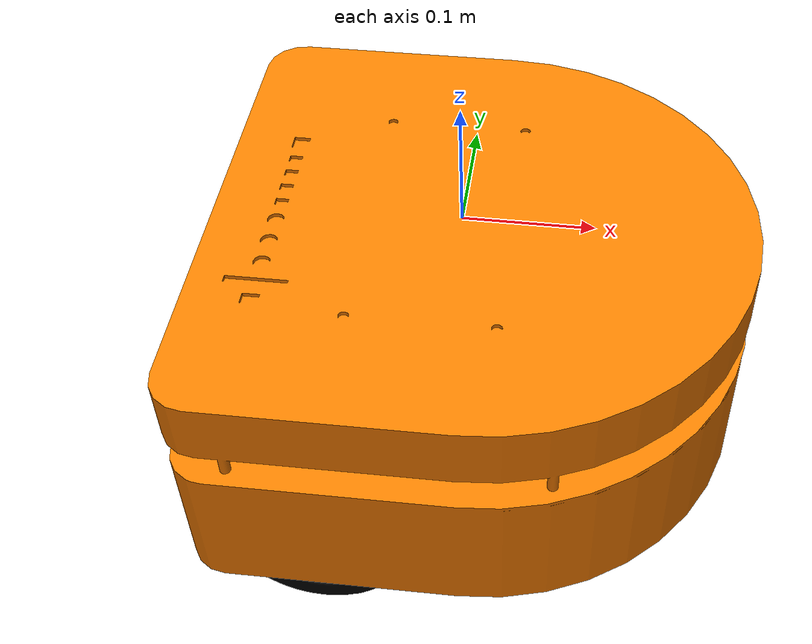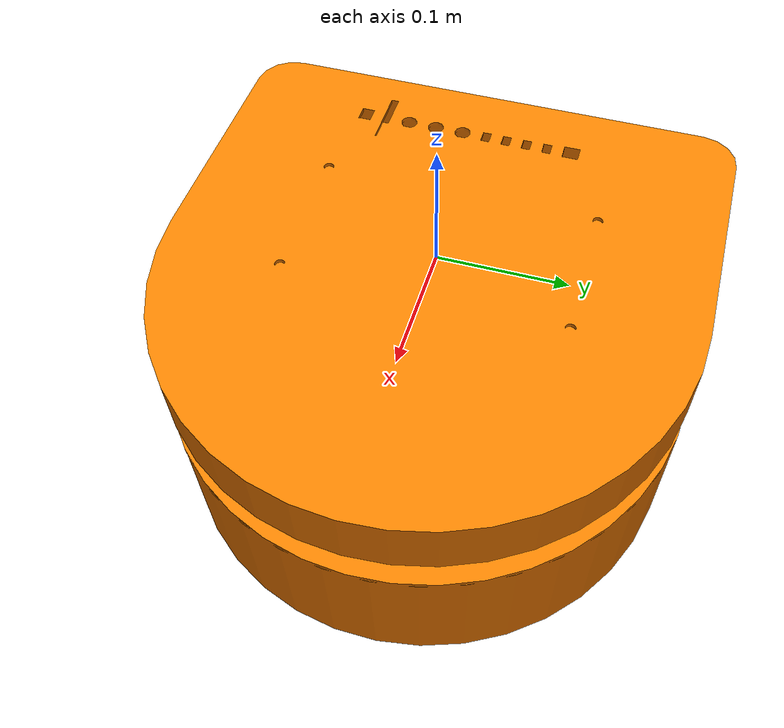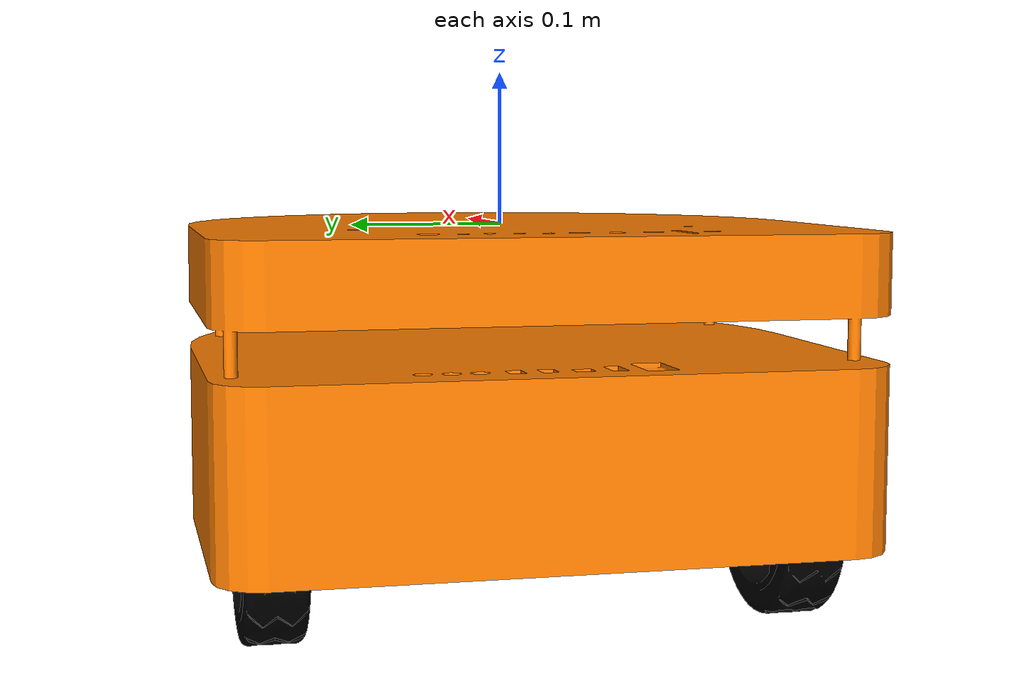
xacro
<?xml version="1.0" ?>
<!-- |    This document was autogenerated by xacro from Pablo_El_Robot.urdf            | -->
<!-- |    EDITING THIS FILE BY HAND IS NOT RECOMMENDED                                 | -->
<robot name="Pablo">
  <link name="base_link">
    <inertial>
      <origin rpy="0 0 0" xyz="-0.002876 -0.00013597 -0.085753"/>
      <mass value="2.4215"/>
      <inertia ixx="0.021858680" ixy="0.0" ixz="0.010020353" iyy="0.078572349" iyz="-0.0" izz="0.091971324"/>
    </inertial>
    <visual>
      <origin rpy="0 0 0" xyz="0 0 0"/>
      <geometry>
        <mesh filename="package://robot_description/meshes/base_link.STL"/>
      </geometry>
      <material name="naranjitabrillante">
        <color rgba="1 0.5 0 1"/>
      </material>
    </visual>
    <collision>
      <origin rpy="0 0 0" xyz="0 0 0"/>
      <geometry>
        <mesh filename="package://robot_description/meshes/base_link.STL"/>
      </geometry>
    </collision>
  </link>
  <link name="wheel_left_link">
    <inertial>
      <origin rpy="0 0 0" xyz="1.3352E-09 8.1843E-10 0.020002"/>
      <mass value="0.26047"/>
      <inertia ixx="0.00008929863" ixy="0" ixz="0" iyy="0.000168983" iyz="0" izz="0.00008929863"/>
    </inertial>
    <visual>
      <origin rpy="0 0 0" xyz="0 0 0"/>
      <geometry>
        <mesh filename="package://robot_description/meshes/wheel_left_link.STL"/>
      </geometry>
      <material name="negro">
        <color rgba="0 0 0 1"/>
      </material>
    </visual>
    <collision>
      <origin rpy="0 0 0" xyz="0 0 0"/>
      <geometry>
        <mesh filename="package://robot_description/meshes/wheel_left_link.STL"/>
      </geometry>
    </collision>
  </link>
  <joint name="wheel_left_joint" type="continuous">
    <origin rpy="-1.5708 0 0" xyz="-0.091483 0.14579 -0.185"/>
    <parent link="base_link"/>
    <child link="wheel_left_link"/>
    <axis xyz="0 0 1"/>
    <limit effort="200" velocity="200"/>
    <dynamics damping="0.001" friction="0.00001"/>
  </joint>
  <link name="wheel_right_link">
    <inertial>
      <origin rpy="0 0 0" xyz="-1.2885E-09 8.9862E-10 -0.020002"/>
      <mass value="0.26047"/>
      <inertia ixx="0.00008929863" ixy="0" ixz="0" iyy="0.000168983" iyz="0" izz="0.00008929863"/>
    </inertial>
    <visual>
      <origin rpy="0 0 0" xyz="0 0 0"/>
      <geometry>
        <mesh filename="package://robot_description/meshes/wheel_right_link.STL"/>
      </geometry>
      <material name="negro">
        <color rgba="0 0 0 1"/>
      </material>
    </visual>
    <collision>
      <origin rpy="0 0 0" xyz="0 0 0"/>
      <geometry>
        <mesh filename="package://robot_description/meshes/wheel_right_link.STL"/>
      </geometry>
    </collision>
  </link>
  <joint name="wheel_right_joint" type="continuous">
    <origin rpy="1.5708 0 3.1416" xyz="-0.091483 -0.14621 -0.185"/>
    <parent link="base_link"/>
    <child link="wheel_right_link"/>
    <axis xyz="0 0 1"/>
    <limit effort="200" velocity="200"/>
    <dynamics damping="0.001" friction="0.00001"/>
  </joint>
  <link name="base_castor_link">
    <inertial>
      <origin rpy="0 0 0" xyz="0 -2.08166817117217E-16 0.0141762813814508"/>
      <mass value="0.0128281265837759"/>
      <inertia ixx="0.000008221" ixy="0" ixz="0" iyy="0.000013003" iyz="0" izz="0.000008221"/>
    </inertial>
    <visual>
      <origin rpy="0 0 0" xyz="0 0 0"/>
      <geometry>
        <mesh filename="package://robot_description/meshes/base_castor_link.STL"/>
      </geometry>
      <material name="rojo">
        <color rgba="1 0 0 1"/>
      </material>
    </visual>
    <collision>
      <origin rpy="0 0 0" xyz="0 0 0"/>
      <geometry>
        <mesh filename="package://robot_description/meshes/base_castor_link.STL"/>
      </geometry>
    </collision>
  </link>
  <joint name="base_castor_joint" type="continuous">
    <origin rpy="3.1416 0 0" xyz="0.11102 -0.00020838 -0.18058"/>
    <parent link="base_link"/>
    <child link="base_castor_link"/>
    <axis xyz="0 0 1"/>
    <limit effort="200" velocity="200"/>
    <dynamics damping="0.001" friction="0.00001"/>
  </joint>
  <link name="wheel_castor_link">
    <inertial>
      <origin rpy="0 0 0" xyz="5.67686175845239E-11 -2.52227516650549E-10 -2.34009084454558E-05"/>
      <mass value="0.0459793119455567"/>
      <inertia ixx="0.000004" ixy="0" ixz="0" iyy="0.000004" iyz="0" izz="0.00001"/>
    </inertial>
    <visual>
      <origin rpy="0 0 0" xyz="0 0 0"/>
      <geometry>
        <mesh filename="package://robot_description/meshes/wheel_castor_link.STL"/>
      </geometry>
      <material name="negro">
        <color rgba="0 0 0 1"/>
      </material>
    </visual>
    <collision>
      <origin rpy="0 0 0" xyz="0 0 0"/>
      <geometry>
        <mesh filename="package://robot_description/meshes/wheel_castor_link.STL"/>
      </geometry>
    </collision>
  </link>
  <joint name="wheel_castor_joint" type="continuous">
    <origin rpy="1.5399 -1.5708 0" xyz="0 0 0.039416"/>
    <parent link="base_castor_link"/>
    <child link="wheel_castor_link"/>
    <axis xyz="0 0 1"/>
    <limit effort="200" velocity="200"/>
    <dynamics damping="0.001" friction="0.00001"/>
  </joint>

  <!-- Gazebo Configuration -->

  <gazebo reference="base_link">
    <mu1>200</mu1>
    <mu2>200</mu2>
    <kp>1000000</kp>
    <kd>1</kd>
    <material>Gazebo/Gold</material>
  </gazebo>

  <gazebo reference="wheel_left_link">
    <mu1>200</mu1>
    <mu2>200</mu2>
    <kp>1000000</kp>
    <kd>1</kd>
    <material>Gazebo/Silver</material>
  </gazebo>
  <gazebo reference="wheel_right_link">
    <mu1>200</mu1>
    <mu2>200</mu2>
    <kp>1000000</kp>
    <kd>1</kd>
    <material>Gazebo/Silver</material>
  </gazebo>

  <gazebo reference="base_castor_link">
    <mu1>0.1</mu1>
    <mu2>0.1</mu2>
    <kp>1000000</kp>
    <kd>1</kd>
    <material>Gazebo/Black</material>
  </gazebo>

  <gazebo reference="wheel_castor_link">
    <mu1>1</mu1>
    <mu2>1</mu2>
    <kp>1000000</kp>
    <kd>1</kd>
    <material>Gazebo/Red</material>
  </gazebo>

  <gazebo>
    <plugin name="two_wheeled_robot_diff_drive" filename="libgazebo_ros_diff_drive.so">

      <updateRate>100</updateRate>

      <!-- wheels -->
      <leftJoint>wheel_left_joint</leftJoint>
      <rightJoint>wheel_right_joint</rightJoint>

      <!-- kinematics -->
      <wheelSeparation>0.294</wheelSeparation>
      <wheelDiameter>0.08</wheelDiameter>

      <!-- limits -->
      <wheelTorque>20</wheelTorque>
      <maxWheelTorque>20</maxWheelTorque>
      <wheelAcceleration>20.0</wheelAcceleration>

      <!-- Receive velocity commands on this ROS topic -->
      <commandTopic>cmd_vel</commandTopic>

      <!-- output -->
      <!-- When false, publish no wheel odometry data to a ROS topic -->
      <publish_odom>true</publish_odom>

      <!-- When true, publish coordinate transform from odom to base_footprint -->
      <!-- I usually use the robot_localization package to publish this transform -->
      <publishOdomTF>true</publishOdomTF>

      <!-- When true, publish coordinate transform from base_link to the wheels -->
      <!-- The robot_state_publisher package is often used to publish this transform -->
      <publishWheelTF>true</publishWheelTF>

      <odometryTopic>odom</odometryTopic>
      <odometryFrame>odom_link</odometryFrame>
      <robotBaseFrame>base_link</robotBaseFrame>
      <publishWheelJointState>true</publishWheelJointState>

      <odometrySource>1</odometrySource>
      <ros>
        <remapping>odom:=wheel/odometry</remapping>
      </ros>
    </plugin>
  </gazebo>

  <gazebo>
    <plugin name="gazebo_ros_joint_state_publisher"
        filename="libgazebo_ros_joint_state_publisher.so">
        <updateRate>100</updateRate>
        <joint_name>base_castor_joint</joint_name>
        <joint_name>wheel_castor_joint</joint_name>
    </plugin>
  </gazebo>

</robot>
